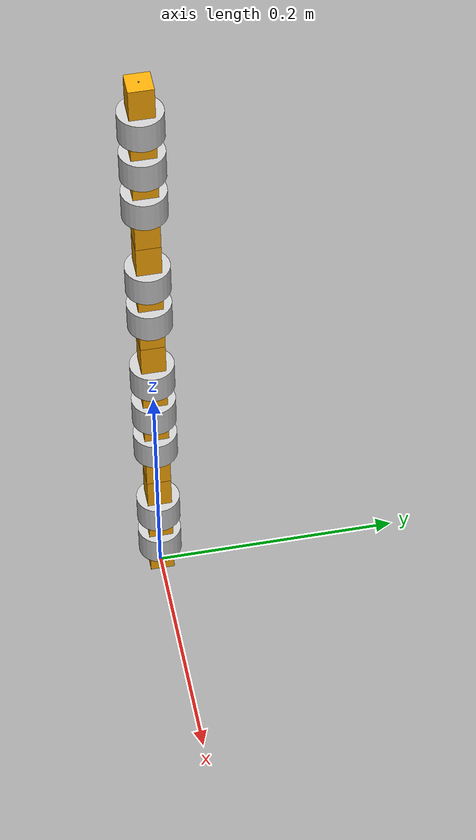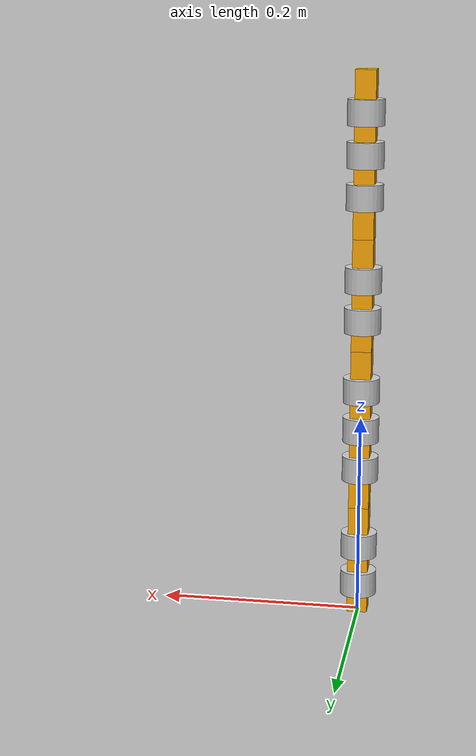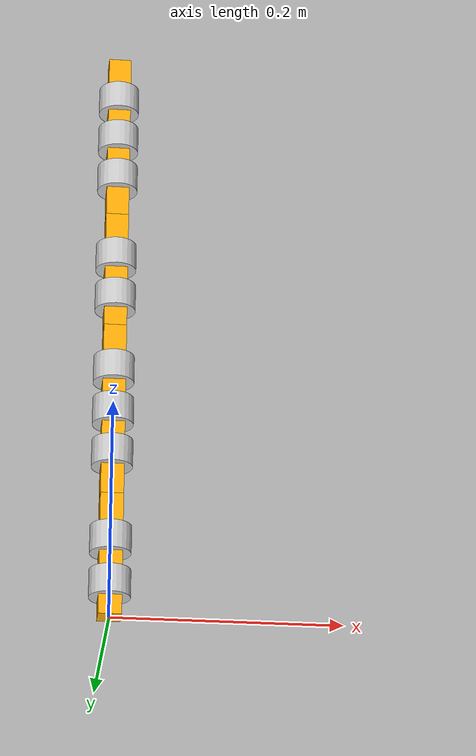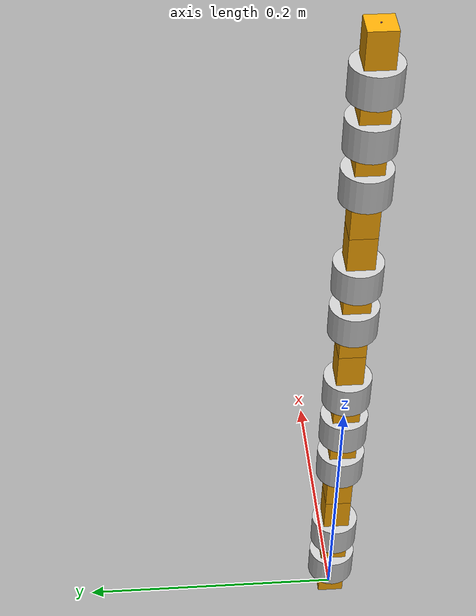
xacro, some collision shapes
<?xml version="1.0"?>
<robot name="arm" xmlns:xacro="http://www.ros.org/wiki/xacro">

  <xacro:property name="PI" value="3.14159265359"/>

  <!-- Joints Control in Gazebo -->
  <gazebo>
    <plugin name="gazebo_ros_control" filename="libgazebo_ros_control.so"/>
  </gazebo>

  <!-- Geometrical properties -->
  <xacro:property name="link_side"      value="0.02"/>
  <xacro:property name="joint_radius"   value="0.018"/>
  <xacro:property name="joint_length"   value="0.025"/>
  <xacro:property name="toe_length"     value="0.03"/>
  <xacro:property name="foot_length"    value="0.04"/>
  <xacro:property name="knee_length"    value="0.04"/>
  <xacro:property name="lap_length"     value="0.04"/>
  <xacro:property name="hip_length"     value="0.04"/>
  <xacro:property name="arm_length"     value="0.04"/>
  <xacro:property name="hand_length"    value="0.04"/>
  <xacro:property name="finger_length"  value="0.04"/>

  <!-- Materials -->
  <material name="orange">
    <color rgba="1.00 0.67 0.02 1.00"/>
  </material>

  <material name="gray">
    <color rgba="0.80 0.80 0.80 1.00"/>
  </material>

  <!-- Generates a box visual/collision/inertial -->
  <xacro:macro name="prism_vci" params="side length mass:=1 *origin">

    <xacro:macro name="prism_geometry">
      <xacro:insert_block name="origin"/>
      <geometry>
        <box size="${side} ${side} ${length}"/>
      </geometry>
    </xacro:macro>

    <visual>
      <xacro:prism_geometry/>
      <material name="orange"/>
    </visual>

    <collision>
      <xacro:prism_geometry/>
    </collision>

    <inertial>
      <xacro:insert_block name="origin"/>
      <mass value="${mass}"/>
      <inertia ixx="${(mass/12)*(side*side+length*length)}"
               iyy="${(mass/12)*(side*side+length*length)}"
               izz="${(mass/6)*(side*side)}"
               ixy="0" ixz="0" iyz="0"/>
    </inertial>

  </xacro:macro>

  <!-- Generates a cylinder visual/collision -->
  <xacro:macro name="cylinder_vc" params="radius length *origin">

    <xacro:macro name="cylinder_geometry">
      <xacro:insert_block name="origin"/>
      <geometry>
        <cylinder length="${length}" radius="${radius}"/>
      </geometry>
    </xacro:macro>

    <visual>
      <xacro:cylinder_geometry/>
      <material name="gray"/>
    </visual>

    <collision>
      <xacro:cylinder_geometry/>
    </collision>

  </xacro:macro>

  <!-- Generates child joint of parent -->
  <xacro:macro name="arm_joint" params="child parent dist:=0 axis joint_type lower upper">

    <!--xacro:unless value="${child == 'arm'}"-->
        <joint name="${parent}_${child}_joint" type="${joint_type}">
            <origin xyz="0 0 ${dist}" rpy="0 0 0"/>
            <parent link="${parent}"/>
            <child link="${child}"/>
            <axis xyz="${axis}"/>

            <!--xacro:unless value="${joint_type == 'prismatic'}"-->
                <limit effort="40.0"
                       velocity="1.0"
                       lower="${lower}"
                       upper="${upper}"/>
            <!--/xacro:unless-->

        </joint>
    <!--/xacro:unless-->

    <!-- Required for ROS control -->
    <transmission name="${parent}_${child}_transmission">
      <type>transmission_interface/SimpleTransmission</type>
      <joint name="${parent}_${child}_joint">
        <hardwareInterface>hardware_interface/EffortJointInterface</hardwareInterface>
      </joint>
      <actuator name="${parent}_${child}_actuator"/>
    </transmission>

    <link name="${parent}">

      <xacro:prism_vci length="${dist}" side="${link_side}">
        <origin xyz="0 0 ${dist/2}" rpy="0 0 0"/>
      </xacro:prism_vci>

      <xacro:cylinder_vc radius="${joint_radius}" length="${joint_length}">

        <xacro:if value="${axis=='0 0 1'}">
          <origin xyz="0 0 ${dist}" rpy="0 0 0"/>
        </xacro:if>

        <xacro:if value="${axis=='1 0 0'}">
          <origin xyz="0 0 ${dist}" rpy="0 ${PI/2} 0"/>
        </xacro:if>

        <xacro:if value="${axis=='0 1 0'}">
          <origin xyz="0 0 ${dist}" rpy="${PI/2} 0 0"/>
        </xacro:if>

      </xacro:cylinder_vc>

    </link>

    <gazebo reference="${parent}">
      <material>Gazebo/Orange</material>
    </gazebo>

  </xacro:macro>

  <!-- Uncomment for RViz with fake joints -->
  <!-- World frame (for Gazebo) -->
  <!--link name="world"/-->

  <!-- Uncomment for RViz with fake joints -->
  <!-- Arm fixed to world frame  -->

  <!-- Joints Chain -->
  <xacro:arm_joint parent="toe"     child="foot"    axis="0 0 1" dist="${toe_length}"   joint_type="revolute"   lower="${-PI}"      upper="${PI}"   />
  <xacro:arm_joint parent="foot"    child="knee"    axis="1 0 0" dist="${foot_length}"  joint_type="revolute"   lower="${-PI}"      upper="${PI}"   />
  <xacro:arm_joint parent="knee"    child="lap"     axis="0 1 0" dist="${knee_length}"  joint_type="revolute"   lower="${-PI}"      upper="${PI}"   />
  <xacro:arm_joint parent="lap"     child="hip"     axis="0 0 1" dist="${lap_length}"   joint_type="prismatic"  lower="0"           upper="2"       />
  <xacro:arm_joint parent="hip"     child="arm"     axis="0 0 1" dist="${hip_length}"   joint_type="revolute"   lower="${-PI}"      upper="${PI}"   />
  <xacro:arm_joint parent="arm"     child="hand"    axis="0 1 0" dist="${arm_length}"   joint_type="revolute"   lower="${-PI}"      upper="${PI}"   />
  <xacro:arm_joint parent="hand"    child="toe_2"  axis="1 0 0" dist="${hand_length}"  joint_type="revolute"   lower="${-PI}"      upper="${PI}"   />
  <!--xacro:arm_joint parent="base_2"  child="toe_2"   axis="1 0 0" dist="${hand_length}"  joint_type="revolute"   lower="${-PI}"      upper="${PI}"   /-->
  <xacro:arm_joint parent="toe_2"   child="foot_2"  axis="0 0 1" dist="${toe_length}"   joint_type="revolute"   lower="${-PI}"      upper="${PI}"   />
  <xacro:arm_joint parent="foot_2"  child="knee_2"  axis="1 0 0" dist="${foot_length}"  joint_type="revolute"   lower="${-PI}"      upper="${PI}"   />
  <xacro:arm_joint parent="knee_2"  child="lap_2"   axis="0 1 0" dist="${knee_length}"  joint_type="revolute"   lower="${-PI}"      upper="${PI}"   />
  <xacro:arm_joint parent="lap_2"   child="hip_2"   axis="0 0 1" dist="${lap_length}"   joint_type="prismatic"  lower="0"           upper="2"       />
  <xacro:arm_joint parent="hip_2"   child="arm_2"   axis="0 0 1" dist="${hip_length}"   joint_type="revolute"   lower="${-PI}"      upper="${PI}"   />
  <xacro:arm_joint parent="arm_2"   child="hand_2"  axis="0 1 0" dist="${arm_length}"   joint_type="revolute"   lower="${-PI}"      upper="${PI}"   />
  <xacro:arm_joint parent="hand_2"  child="finger"  axis="1 0 0" dist="${hand_length}"  joint_type="revolute"   lower="${-PI}"      upper="${PI}"   />

  <!-- End effector -->
  <link name="finger">
      <inertial>
        <mass value="1.477" />
        <origin xyz="0 0 0" />
        <inertia ixx="0.01152" ixy="0.0" ixz="0.0" iyy="0.01152" iyz="0.0" izz="0.0218" />
      </inertial>

      <visual>
        <origin xyz="0 0 0" rpy="0 0 0" />
        <geometry>
          <mesh filename="package://arm_description/meshes/ardrone.dae"/>
        </geometry>
      </visual>

      <collision>
        <origin xyz="0 0 0" rpy="0 0 0" />
        <geometry>
          <!--mesh filename="package://arm_description/urdf/ardrone.dae"/-->
          <box size="0.001 0.001 0.001"/>
        </geometry>
      </collision>
  </link>

</robot>
